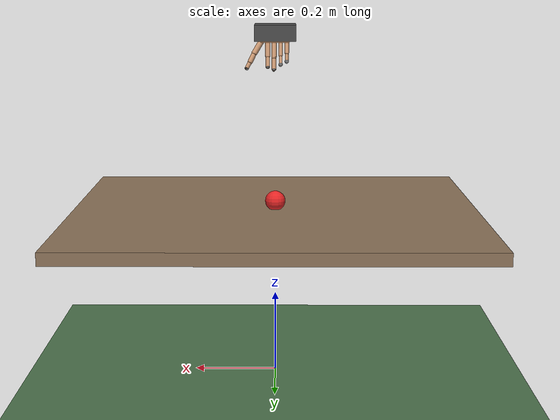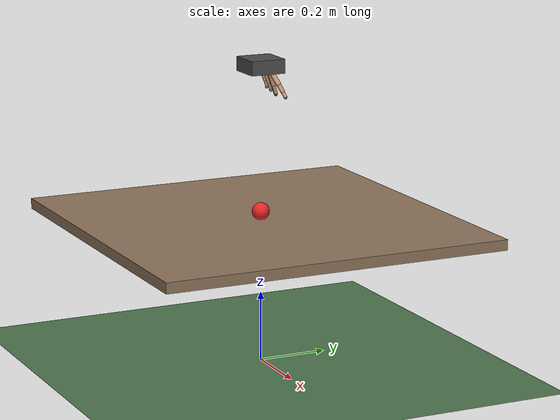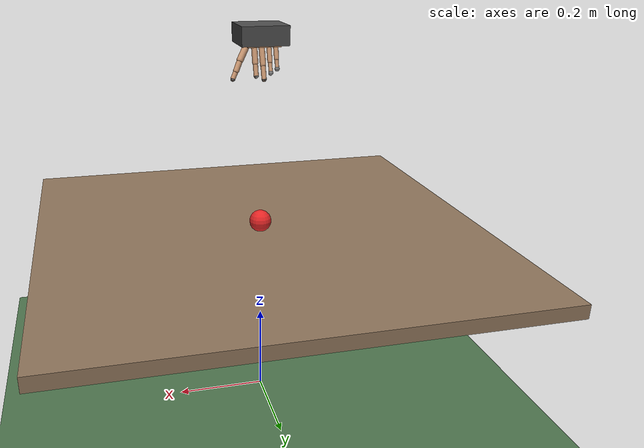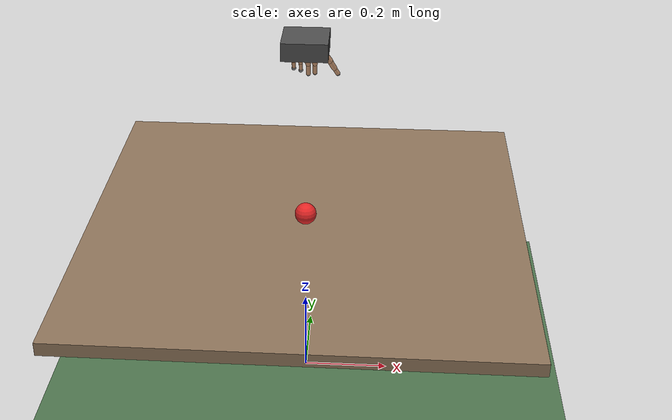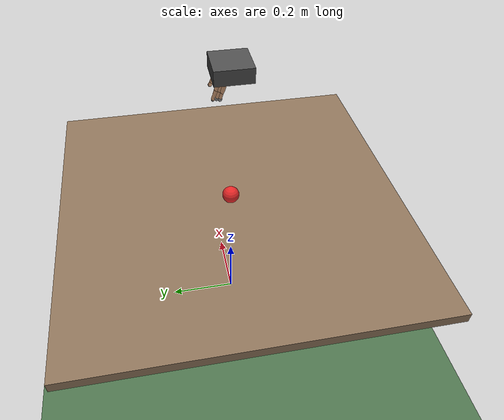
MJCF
<mujoco model="dexhand_final">
  <compiler angle="radian"/>
  <option timestep="0.001" iterations="50"/>
  <default>
    <geom condim="4" friction="1.5 0.01 0.001"/>
    <joint damping="2"/>
  </default>
  <visual>
    <headlight diffuse="0.7 0.7 0.7" ambient="0.3 0.3 0.3"/>
    <global azimuth="210" elevation="-30" offwidth="1280" offheight="720"/>
  </visual>
  <asset>
    <material name="red" rgba="0.9 0.15 0.15 1"/>
    <material name="blue" rgba="0.15 0.25 0.9 1"/>
    <material name="green" rgba="0.15 0.75 0.25 1"/>
    <material name="yellow" rgba="0.9 0.85 0.15 1"/>
    <material name="purple" rgba="0.55 0.15 0.8 1"/>
    <material name="orange" rgba="0.95 0.55 0.1 1"/>
    <material name="cyan" rgba="0.1 0.8 0.8 1"/>
    <material name="pink" rgba="0.95 0.4 0.7 1"/>
    <material name="brown" rgba="0.55 0.35 0.15 1"/>
    <material name="gray" rgba="0.5 0.5 0.5 1"/>
    <material name="hand_mat" rgba="0.8 0.6 0.45 1"/>
    <material name="palm_mat" rgba="0.75 0.55 0.4 1"/>
  </asset>
  <worldbody>
    <geom name="floor" type="plane" size="2 2 0.1" rgba="0.3 0.45 0.3 1"/>
    <body name="table" pos="0 0 0.4">
      <geom type="box" size="0.5 0.5 0.015" rgba="0.55 0.45 0.35 1"/>
    </body>
    <!-- 物体 -->
    <body name="obj" pos="0 0 0.435">
      <freejoint name="obj_j"/>
      <geom name="obj_g" type="sphere" size="0.025" material="red" mass="0.05"/>
    </body>
    <!-- 手掌 + z轴升降 + 5指 -->
    <body name="base" pos="0 0 0.85">
      <geom type="box" size="0.05 0.05 0.02" rgba="0.3 0.3 0.3 1" contype="0" conaffinity="0"/>
      <body name="slider">
        <joint name="z" type="slide" axis="0 0 -1" range="0 0.45" damping="20"/>
        <geom type="cylinder" size="0.02 0.015" rgba="0.4 0.4 0.4 1" contype="0" conaffinity="0"/>
        <body name="palm" pos="0 0 -0.015">
          <geom type="box" size="0.035 0.04 0.008" material="palm_mat" contype="0" conaffinity="0"/>
          <!-- 拇指 -->
          <body name="thumb1" pos="0.035 0.02 -0.008">
            <joint name="tj1" type="hinge" axis="0 1 0" range="0 1.5"/>
            <geom type="capsule" fromto="0 0 0 0.015 0.01 -0.025" size="0.007" material="hand_mat"/>
            <body name="thumb2" pos="0.015 0.01 -0.025">
              <joint name="tj2" type="hinge" axis="0 1 0" range="0 1.2"/>
              <geom type="capsule" fromto="0 0 0 0.01 0.008 -0.02" size="0.006" material="hand_mat"/>
              <body name="thumb3" pos="0.01 0.008 -0.02">
                <joint name="tj3" type="hinge" axis="0 1 0" range="0 1.0"/>
                <geom type="capsule" fromto="0 0 0 0.008 0.005 -0.015" size="0.005" material="hand_mat"/>
                <site name="st" pos="0.008 0.005 -0.015"/>
              </body>
            </body>
          </body>
          <!-- 食指 -->
          <body name="f1a" pos="0.018 0.02 -0.008">
            <joint name="j1" type="hinge" axis="-1 0 0" range="0 2"/>
            <geom type="capsule" fromto="0 0 0 0 0.01 -0.032" size="0.006" material="hand_mat"/>
            <body name="f1b" pos="0 0.01 -0.032">
              <joint name="j1t" type="hinge" axis="-1 0 0" range="0 1.8"/>
              <geom type="capsule" fromto="0 0 0 0 0.008 -0.025" size="0.005" material="hand_mat"/>
              <site name="s1" pos="0 0.008 -0.025"/>
            </body>
          </body>
          <!-- 中指 -->
          <body name="f2a" pos="0.003 0.023 -0.008">
            <joint name="j2" type="hinge" axis="-1 0 0" range="0 2"/>
            <geom type="capsule" fromto="0 0 0 0 0.012 -0.035" size="0.006" material="hand_mat"/>
            <body name="f2b" pos="0 0.012 -0.035">
              <joint name="j2t" type="hinge" axis="-1 0 0" range="0 1.8"/>
              <geom type="capsule" fromto="0 0 0 0 0.01 -0.028" size="0.005" material="hand_mat"/>
              <site name="s2" pos="0 0.01 -0.028"/>
            </body>
          </body>
          <!-- 无名指 -->
          <body name="f3a" pos="-0.013 0.02 -0.008">
            <joint name="j3" type="hinge" axis="-1 0 0" range="0 2"/>
            <geom type="capsule" fromto="0 0 0 0 0.01 -0.03" size="0.005" material="hand_mat"/>
            <body name="f3b" pos="0 0.01 -0.03">
              <joint name="j3t" type="hinge" axis="-1 0 0" range="0 1.8"/>
              <geom type="capsule" fromto="0 0 0 0 0.008 -0.022" size="0.004" material="hand_mat"/>
              <site name="s3" pos="0 0.008 -0.022"/>
            </body>
          </body>
          <!-- 小指 -->
          <body name="f4a" pos="-0.028 0.018 -0.008">
            <joint name="j4" type="hinge" axis="-1 0 0" range="0 2"/>
            <geom type="capsule" fromto="0 0 0 0 0.008 -0.025" size="0.005" material="hand_mat"/>
            <body name="f4b" pos="0 0.008 -0.025">
              <joint name="j4t" type="hinge" axis="-1 0 0" range="0 1.8"/>
              <geom type="capsule" fromto="0 0 0 0 0.006 -0.02" size="0.004" material="hand_mat"/>
              <site name="s4" pos="0 0.006 -0.02"/>
            </body>
          </body>
        </body>
      </body>
    </body>
  </worldbody>
  <sensor>
    <touch name="t_thumb" site="st"/>
    <touch name="t1" site="s1"/>
    <touch name="t2" site="s2"/>
    <touch name="t3" site="s3"/>
    <touch name="t4" site="s4"/>
  </sensor>
  <actuator>
    <position name="az" joint="z" kp="2000" kv="200"/>
    <position name="at1" joint="tj1" kp="200" kv="20"/>
    <position name="at2" joint="tj2" kp="150" kv="15"/>
    <position name="at3" joint="tj3" kp="120" kv="12"/>
    <position name="a1" joint="j1" kp="200" kv="20"/>
    <position name="a1t" joint="j1t" kp="150" kv="15"/>
    <position name="a2" joint="j2" kp="200" kv="20"/>
    <position name="a2t" joint="j2t" kp="150" kv="15"/>
    <position name="a3" joint="j3" kp="200" kv="20"/>
    <position name="a3t" joint="j3t" kp="150" kv="15"/>
    <position name="a4" joint="j4" kp="200" kv="20"/>
    <position name="a4t" joint="j4t" kp="150" kv="15"/>
  </actuator>
</mujoco>
